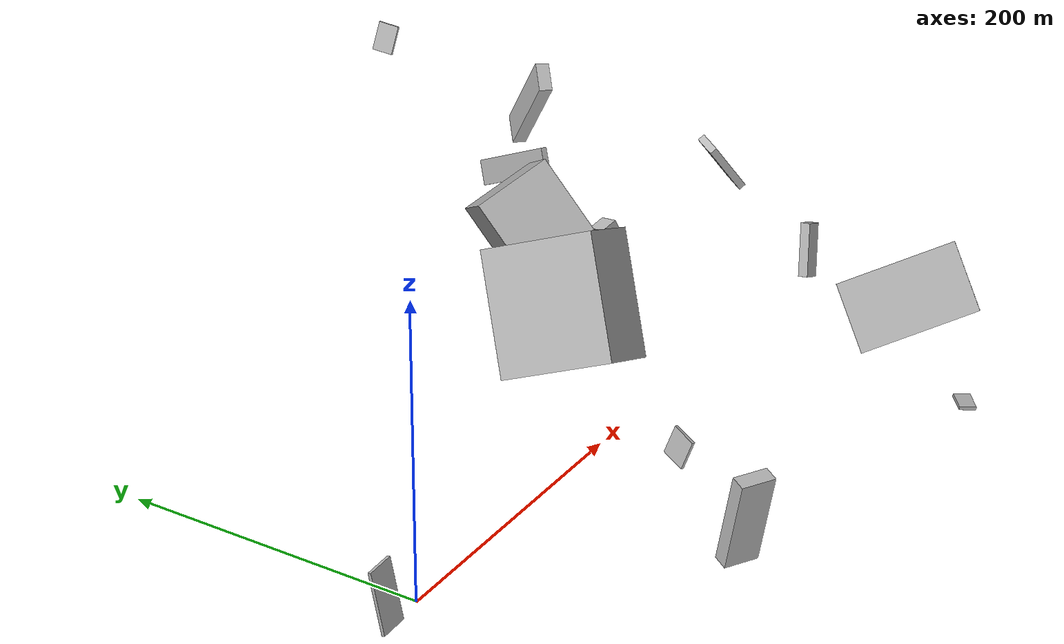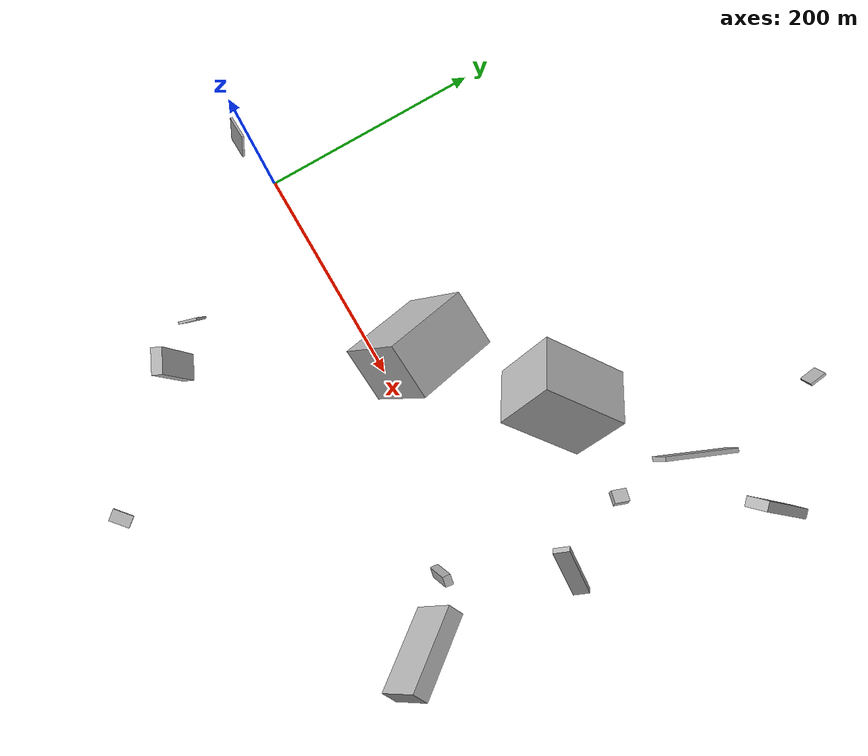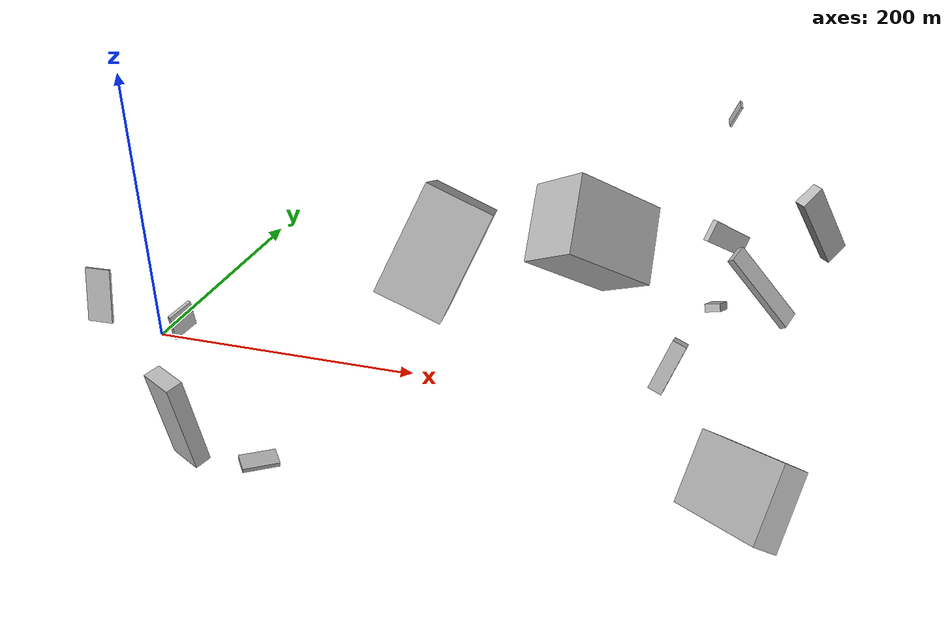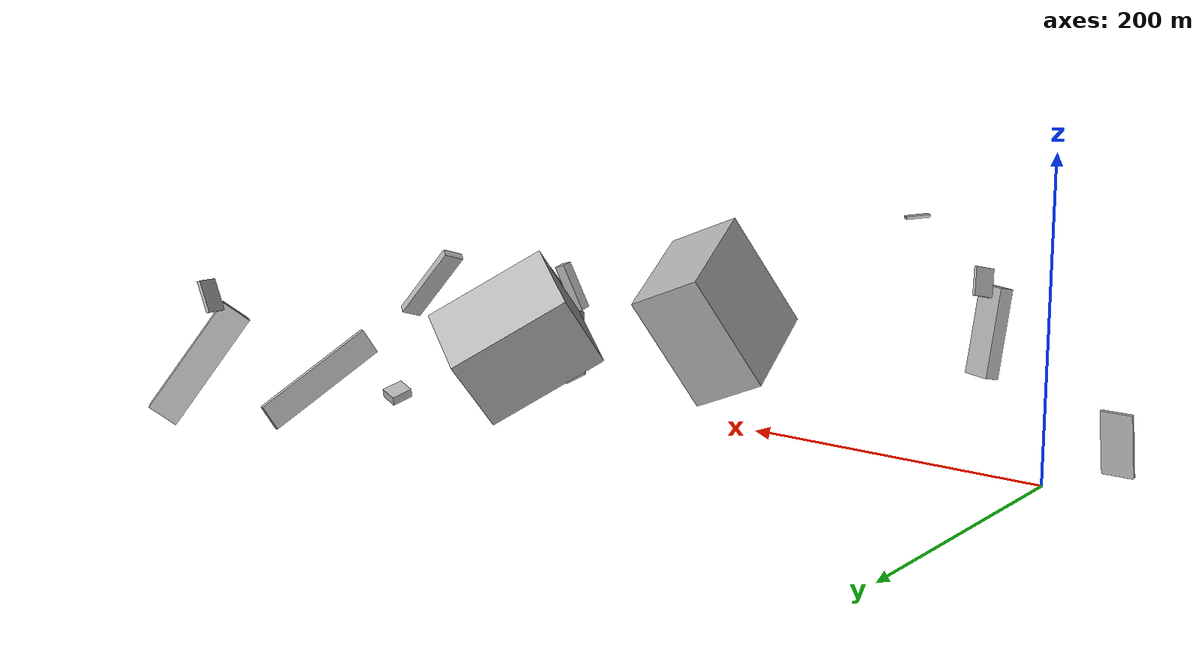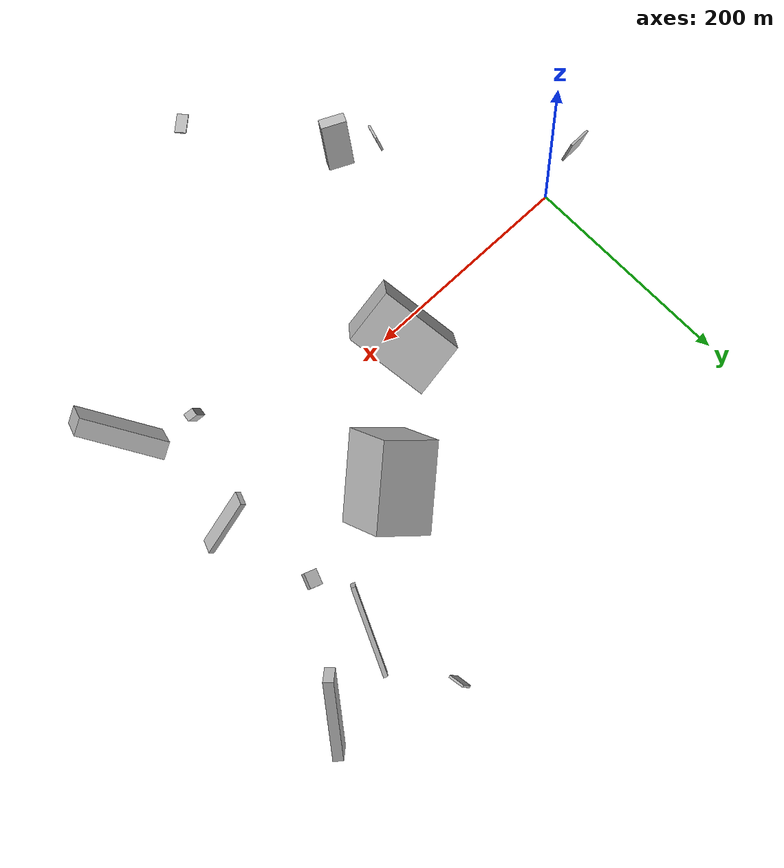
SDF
<sdf version="1.6">
 <world name="default">
  <scene>
   <sky><clouds><speed>12</speed></clouds></sky>
   <ambient>0.4 0.4 0.4 1</ambient>
   <background>0.7 0.7 0.7 1</background>
   <shadows>1</shadows>
  </scene>
  <gravity>0 0 -9.8066</gravity>
  <magnetic_field>6e-06 2.3e-05 -4.2e-05</magnetic_field>
  <physics default="0" name="default_physics" type="ode">
   <ode>
    <solver>
     <type>quick</type>
     <iters>10</iters>
     <sor>1.0</sor>
     <use_dynamic_moi_rescaling>0</use_dynamic_moi_rescaling>
    </solver>
    <constraints>
     <cfm>0</cfm>
     <erp>0.2</erp>
     <contact_max_correcting_vel>100</contact_max_correcting_vel>
     <contact_surface_layer>0.001</contact_surface_layer>
    </constraints>
   </ode>
   <max_step_size>0.004</max_step_size>
   <real_time_factor>1</real_time_factor>
   <real_time_update_rate>250</real_time_update_rate>
  </physics>
  <light name="sun" type="directional">
   <pose>0 0 10 0 0 0</pose>
   <diffuse>0.8 0.8 0.8 1</diffuse>
   <specular>0.2 0.2 0.2 1</specular>
   <attenuation>
    <range>1000</range>
    <constant>0.9</constant>
    <linear>0.01</linear>
    <quadratic>0.001</quadratic>
   </attenuation>
   <direction>-0.5 0.1 -0.9</direction>
  </light>
  <model name="building_1">
   <static>0</static>
   <pose>122.60448652115173 -156.3475680344615 47.398790855794005 1.3305436620702078 -1.3720059152992274 -1.8002228742565638</pose>
   <link name="link">
    <gravity>0</gravity>
    <pose>0 0 11.5 0 0 0</pose>
    <collision name="collision"><geometry><box><size>61 10 23</size></box></geometry></collision>
    <visual name="visual">
     <cast_shadows>0</cast_shadows>
     <geometry><box><size>61 10 23</size></box></geometry>
     <material>
      <script>
       <uri>model://HANNAS_wall/materials/scripts</uri>
       <uri>model://HANNAS_wall/materials/textures</uri>
       <name>vrc/HANNAS_wall</name>
      </script>
     </material>
    </visual>
   </link>
  </model>
  <model name="building_2">
   <static>0</static>
   <pose>373.10731185082597 -45.90879536569309 47.33321932742449 0.33180393719902596 0.22259880406602714 1.4562741335816765</pose>
   <link name="link">
    <gravity>0</gravity>
    <pose>0 0 17.0 0 0 0</pose>
    <collision name="collision"><geometry><box><size>7 9 34</size></box></geometry></collision>
    <visual name="visual">
     <cast_shadows>0</cast_shadows>
     <geometry><box><size>7 9 34</size></box></geometry>
     <material>
      <script>
       <uri>model://HANNAS_wall/materials/scripts</uri>
       <uri>model://HANNAS_wall/materials/textures</uri>
       <name>vrc/HANNAS_wall</name>
      </script>
     </material>
    </visual>
   </link>
  </model>
  <model name="building_3">
   <static>0</static>
   <pose>389.03280098032883 287.3411192989281 108.79325922311547 0.40116790535170155 -0.10063172899910768 1.69274586954499</pose>
   <link name="link">
    <gravity>0</gravity>
    <pose>0 0 9.5 0 0 0</pose>
    <collision name="collision"><geometry><box><size>14 2 19</size></box></geometry></collision>
    <visual name="visual">
     <cast_shadows>0</cast_shadows>
     <geometry><box><size>14 2 19</size></box></geometry>
     <material>
      <script>
       <uri>model://HANNAS_wall/materials/scripts</uri>
       <uri>model://HANNAS_wall/materials/textures</uri>
       <name>vrc/HANNAS_wall</name>
      </script>
     </material>
    </visual>
   </link>
  </model>
  <model name="building_4">
   <static>0</static>
   <pose>397.6864913605076 187.146617550219 37.75651566269781 -0.15152649661484785 -0.5151665203020575 -1.9477899623376083</pose>
   <link name="link">
    <gravity>0</gravity>
    <pose>0 0 8.5 0 0 0</pose>
    <collision name="collision"><geometry><box><size>80 4 17</size></box></geometry></collision>
    <visual name="visual">
     <cast_shadows>0</cast_shadows>
     <geometry><box><size>80 4 17</size></box></geometry>
     <material>
      <script>
       <uri>model://HANNAS_wall/materials/scripts</uri>
       <uri>model://HANNAS_wall/materials/textures</uri>
       <name>vrc/HANNAS_wall</name>
      </script>
     </material>
    </visual>
   </link>
  </model>
  <model name="building_5">
   <static>0</static>
   <pose>323.16364791587404 103.12053992762819 81.25865478860737 2.1105423103210468 -0.5217888202046275 -2.4317101999196327</pose>
   <link name="link">
    <gravity>0</gravity>
    <pose>0 0 25.5 0 0 0</pose>
    <collision name="collision"><geometry><box><size>80 61 51</size></box></geometry></collision>
    <visual name="visual">
     <cast_shadows>0</cast_shadows>
     <geometry><box><size>80 61 51</size></box></geometry>
     <material>
      <script>
       <uri>model://HANNAS_wall/materials/scripts</uri>
       <uri>model://HANNAS_wall/materials/textures</uri>
       <name>vrc/HANNAS_wall</name>
      </script>
     </material>
    </visual>
   </link>
  </model>
  <model name="building_6">
   <static>0</static>
   <pose>232.38381105323143 34.50537170165384 73.79858958364372 1.12887371706542 -0.3569300045251675 -1.3410677827764557</pose>
   <link name="link">
    <gravity>0</gravity>
    <pose>0 0 24.5 0 0 0</pose>
    <collision name="collision"><geometry><box><size>75 80 49</size></box></geometry></collision>
    <visual name="visual">
     <cast_shadows>0</cast_shadows>
     <geometry><box><size>75 80 49</size></box></geometry>
     <material>
      <script>
       <uri>model://HANNAS_wall/materials/scripts</uri>
       <uri>model://HANNAS_wall/materials/textures</uri>
       <name>vrc/HANNAS_wall</name>
      </script>
     </material>
    </visual>
   </link>
  </model>
  <model name="building_7">
   <static>0</static>
   <pose>96.8730879366681 -121.36125625048267 88.20167050642385 1.3099442727431452 -0.21121531377194436 2.842565325233003</pose>
   <link name="link">
    <gravity>0</gravity>
    <pose>0 0 8.0 0 0 0</pose>
    <collision name="collision"><geometry><box><size>2 19 16</size></box></geometry></collision>
    <visual name="visual">
     <cast_shadows>0</cast_shadows>
     <geometry><box><size>2 19 16</size></box></geometry>
     <material>
      <script>
       <uri>model://HANNAS_wall/materials/scripts</uri>
       <uri>model://HANNAS_wall/materials/textures</uri>
       <name>vrc/HANNAS_wall</name>
      </script>
     </material>
    </visual>
   </link>
  </model>
  <model name="building_8">
   <static>0</static>
   <pose>468.124076770011 226.69305952266723 52.18273884922483 -1.7481650421598776 -0.9139838685204595 -2.189353890719599</pose>
   <link name="link">
    <gravity>0</gravity>
    <pose>0 0 4.5 0 0 0</pose>
    <collision name="collision"><geometry><box><size>80 20 9</size></box></geometry></collision>
    <visual name="visual">
     <cast_shadows>0</cast_shadows>
     <geometry><box><size>80 20 9</size></box></geometry>
     <material>
      <script>
       <uri>model://HANNAS_wall/materials/scripts</uri>
       <uri>model://HANNAS_wall/materials/textures</uri>
       <name>vrc/HANNAS_wall</name>
      </script>
     </material>
    </visual>
   </link>
  </model>
  <model name="building_9">
   <static>0</static>
   <pose>432.5583384713086 -77.77525298267338 38.10146424204547 2.733827881116464 0.5121437779943141 0.4442935301094264</pose>
   <link name="link">
    <gravity>0</gravity>
    <pose>0 0 23.5 0 0 0</pose>
    <collision name="collision"><geometry><box><size>16 80 47</size></box></geometry></collision>
    <visual name="visual">
     <cast_shadows>0</cast_shadows>
     <geometry><box><size>16 80 47</size></box></geometry>
     <material>
      <script>
       <uri>model://HANNAS_wall/materials/scripts</uri>
       <uri>model://HANNAS_wall/materials/textures</uri>
       <name>vrc/HANNAS_wall</name>
      </script>
     </material>
    </visual>
   </link>
  </model>
  <model name="building_10">
   <static>0</static>
   <pose>426.6832389848385 50.037434153086416 74.79769542338518 0.9121223019589237 -0.321029739204402 1.178457375073987</pose>
   <link name="link">
    <gravity>0</gravity>
    <pose>0 0 2.5 0 0 0</pose>
    <collision name="collision"><geometry><box><size>14 59 5</size></box></geometry></collision>
    <visual name="visual">
     <cast_shadows>0</cast_shadows>
     <geometry><box><size>14 59 5</size></box></geometry>
     <material>
      <script>
       <uri>model://HANNAS_wall/materials/scripts</uri>
       <uri>model://HANNAS_wall/materials/textures</uri>
       <name>vrc/HANNAS_wall</name>
      </script>
     </material>
    </visual>
   </link>
  </model>
  <model name="building_11">
   <static>0</static>
   <pose>-42.226939613497734 -9.215215803354933 31.843526559898734 1.769985143460567 0.005298213354824175 -3.1168189157292483</pose>
   <link name="link">
    <gravity>0</gravity>
    <pose>0 0 1.0 0 0 0</pose>
    <collision name="collision"><geometry><box><size>20 41 2</size></box></geometry></collision>
    <visual name="visual">
     <cast_shadows>0</cast_shadows>
     <geometry><box><size>20 41 2</size></box></geometry>
     <material>
      <script>
       <uri>model://HANNAS_wall/materials/scripts</uri>
       <uri>model://HANNAS_wall/materials/textures</uri>
       <name>vrc/HANNAS_wall</name>
      </script>
     </material>
    </visual>
   </link>
  </model>
  <model name="building_12">
   <static>0</static>
   <pose>220.20475520046745 -230.4976015591298 100.24570080854997 -1.482247923988497 -0.09794319763195727 2.2514097616555837</pose>
   <link name="link">
    <gravity>0</gravity>
    <pose>0 0 8.5 0 0 0</pose>
    <collision name="collision"><geometry><box><size>10 2 17</size></box></geometry></collision>
    <visual name="visual">
     <cast_shadows>0</cast_shadows>
     <geometry><box><size>10 2 17</size></box></geometry>
     <material>
      <script>
       <uri>model://HANNAS_wall/materials/scripts</uri>
       <uri>model://HANNAS_wall/materials/textures</uri>
       <name>vrc/HANNAS_wall</name>
      </script>
     </material>
    </visual>
   </link>
  </model>
  <model name="building_13">
   <static>0</static>
   <pose>398.40052196571753 120.85042448460382 23.066493226211833 2.841952241574906 0.2716738232362916 1.2280980113337256</pose>
   <link name="link">
    <gravity>0</gravity>
    <pose>0 0 3.0 0 0 0</pose>
    <collision name="collision"><geometry><box><size>14 12 6</size></box></geometry></collision>
    <visual name="visual">
     <cast_shadows>0</cast_shadows>
     <geometry><box><size>14 12 6</size></box></geometry>
     <material>
      <script>
       <uri>model://HANNAS_wall/materials/scripts</uri>
       <uri>model://HANNAS_wall/materials/textures</uri>
       <name>vrc/HANNAS_wall</name>
      </script>
     </material>
    </visual>
   </link>
  </model>
 </world>
</sdf>
